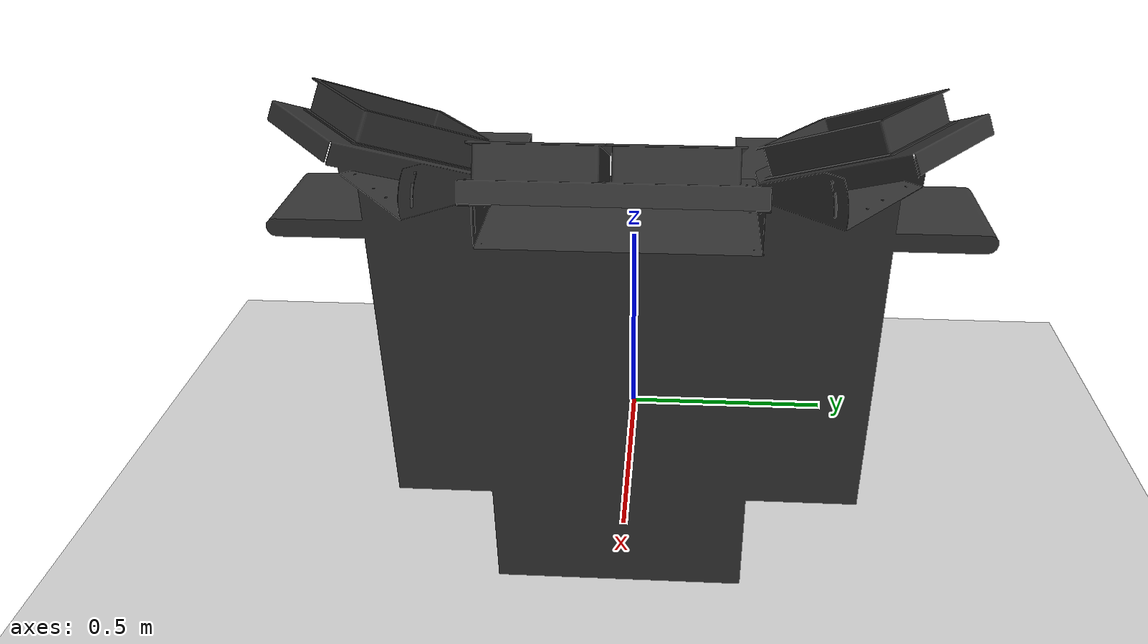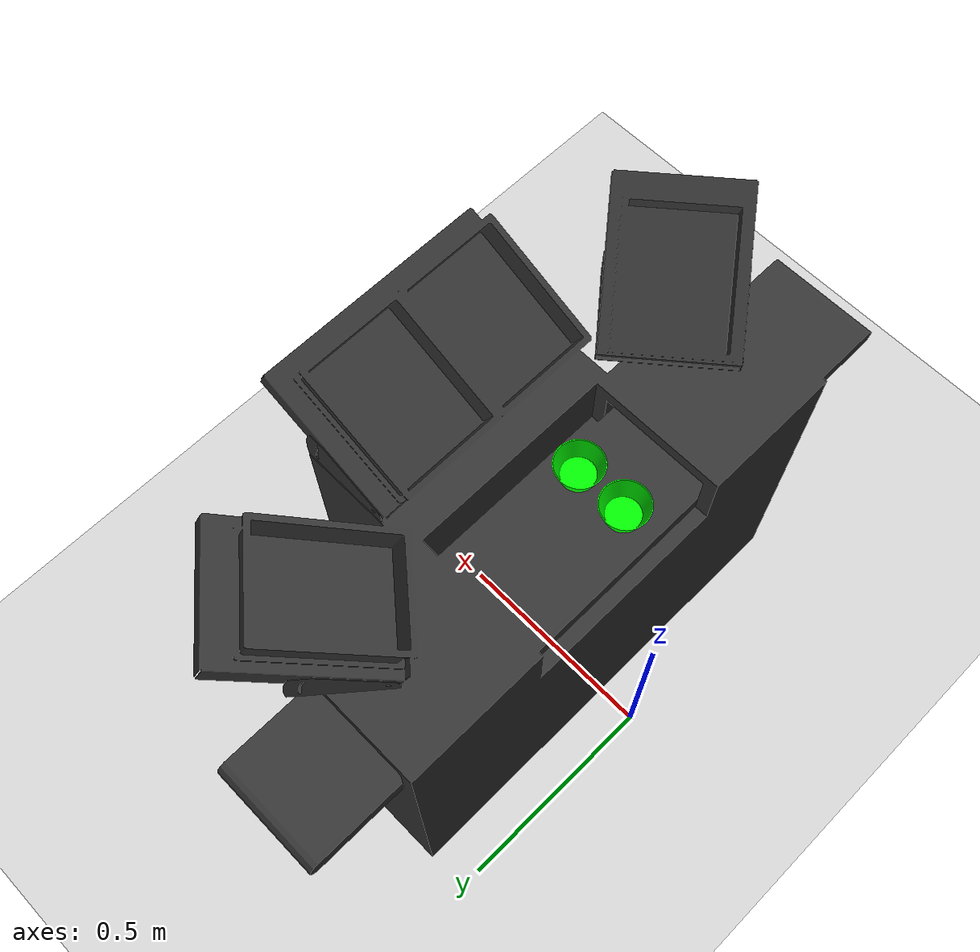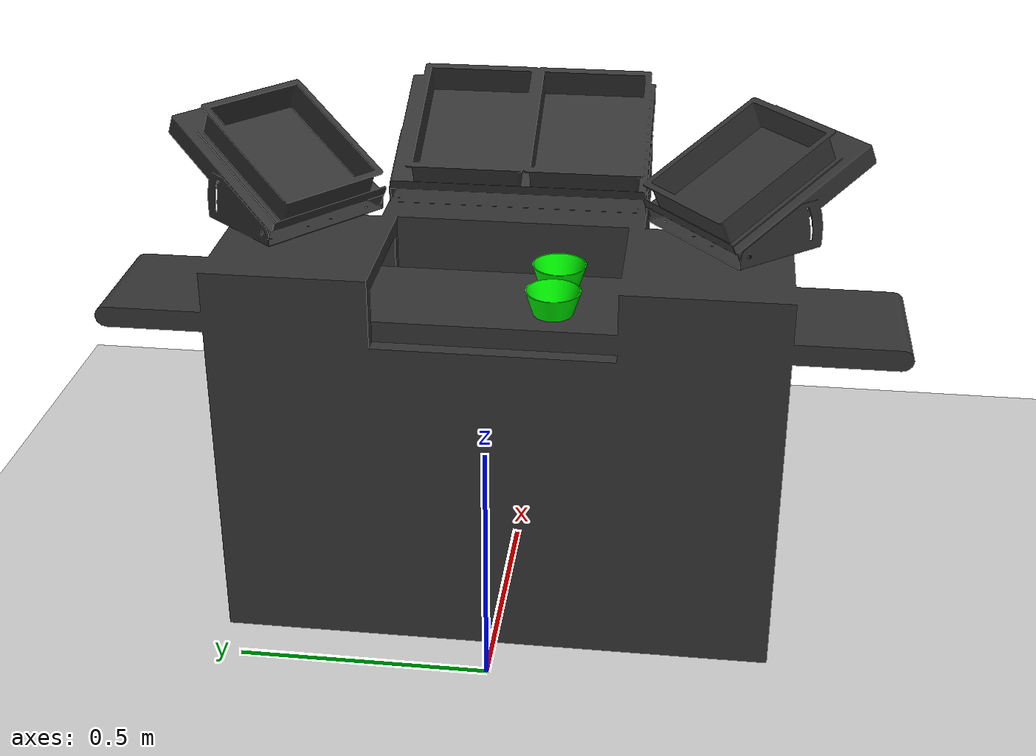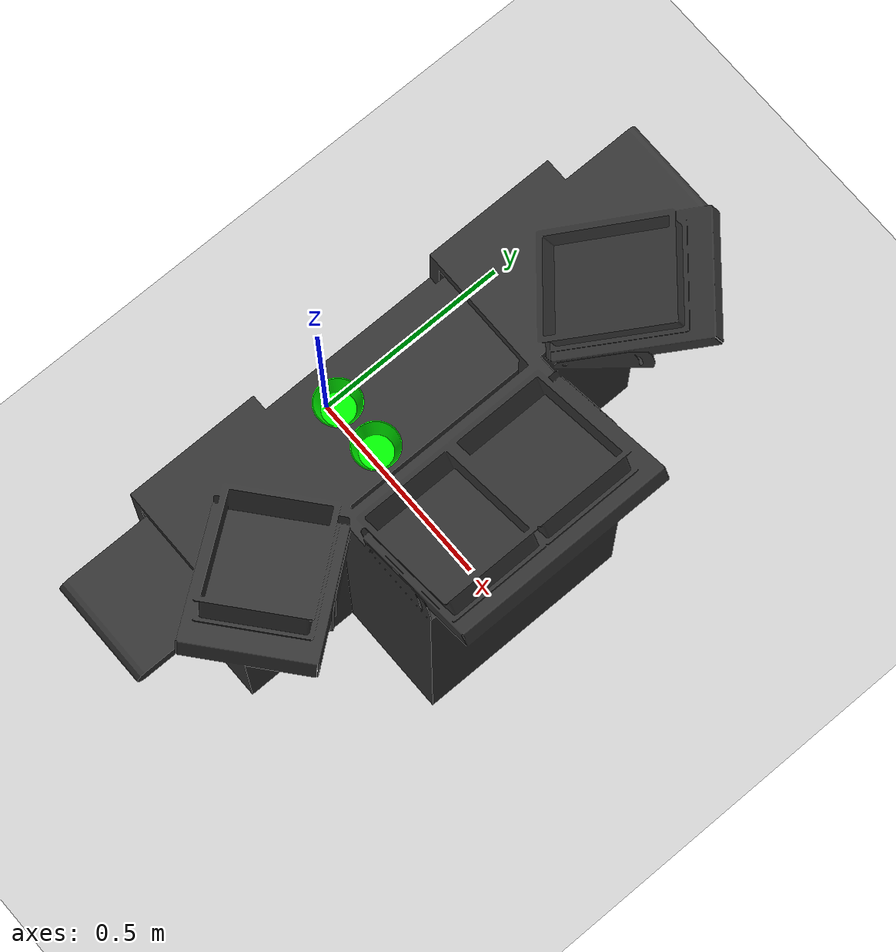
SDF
<?xml version="1.0" ?>
<sdf version="1.6">
  <world name="default">
    <physics name="5ms" type="ignored">
      <max_step_size>0.005</max_step_size>
      <real_time_factor>1.0</real_time_factor>
    </physics>
    <plugin
      filename="ignition-gazebo-physics-system"
      name="ignition::gazebo::systems::Physics">
    </plugin>
    <plugin
      filename="ignition-gazebo-user-commands-system"
      name="ignition::gazebo::systems::UserCommands">
    </plugin>
    <plugin
      filename="ignition-gazebo-scene-broadcaster-system"
      name="ignition::gazebo::systems::SceneBroadcaster">
    </plugin>

    <include>
      <uri>
        https://fuel.gazebosim.org/1.0/OpenRobotics/models/Sun
      </uri>
    </include>

    <include>
      <uri>
        https://fuel.gazebosim.org/1.0/OpenRobotics/models/Ground Plane
      </uri>
    </include>

    <model name="table">

      <link name="table_link">
        <visual name="table_visual">
          <geometry>
            <mesh>
              <uri>meshes/Foodly_Table.stl</uri>
            </mesh>
          </geometry>
          <material>
            <ambient>0.1 0.1 0.1 1</ambient> <!-- Ambient light color -->
            <diffuse>0.2 0.2 0.2 1</diffuse> <!-- Green color -->
            <specular>0.1 0.1 0.1 1</specular> <!-- Light reflection properties -->
            <emissive>0.0 0.0 0.0 1</emissive> <!-- Emission light properties -->
          </material>
        </visual>
        <collision name="table_collision">
          <geometry>
            <mesh>
              <uri>meshes/Foodly_Table.stl</uri>
            </mesh>
          </geometry>
        </collision>
      </link>

      <link name="bowl3_link">
        <visual name = "bowl1_visual">
          <geometry>
            <mesh>
              <uri>meshes/Bowl.stl</uri>
              <scale>0.001 0.001 0.001</scale>
            </mesh>
          </geometry>
          <material>
            <ambient>0.1 0.1 0.1 1</ambient>
            <diffuse>0.0 1.0 0.0 1</diffuse>
            <specular>0.1 0.1 0.1 1</specular>
            <emissive>0.0 0.0 0.0 1</emissive>
          </material>
        </visual>
        <collision name = "bowl3_collision">
          <geometry>
            <mesh>
              <uri>meshes/Bowl.stl</uri>
              <scale>0.001 0.001 0.001</scale>
            </mesh>
          </geometry>
        </collision>
        <pose>-0.10 -0.05 0.7 1.57 0 0</pose>
      </link>

      <joint name="table_bowl3_joint" type="fixed">
        <parent>table_link</parent>
        <child>bowl3_link</child>
        <pose>0 0 0 0 0 0</pose>
      </joint>

      <link name="bowl4_link">
        <visual name = "bowl4_visual">
          <geometry>
            <mesh>
              <uri>meshes/Bowl.stl</uri>
              <scale>0.001 0.001 0.001</scale>
            </mesh>
          </geometry>
          <material>
            <ambient>0.1 0.1 0.1 1</ambient>
            <diffuse>0.0 1.0 0.0 1</diffuse>
            <specular>0.1 0.1 0.1 1</specular>
            <emissive>0.0 0.0 0.0 1</emissive>
          </material>
        </visual>
        <collision name = "bowl4_collision">
          <geometry>
            <mesh>
              <uri>meshes/Bowl.stl</uri>
              <scale>0.001 0.001 0.001</scale>
            </mesh>
          </geometry>
        </collision>
        <pose>0.02 -0.05 0.7 1.57 0 0</pose>
      </link>

      <joint name="table_bowl4_joint" type="fixed">
        <parent>table_link</parent>
        <child>bowl4_link</child>
        <pose>0 0 0 0 0 0</pose>
      </joint>

      <pose>0.25 0 0 0 0 0</pose>
    </model>

  </world>
</sdf>
